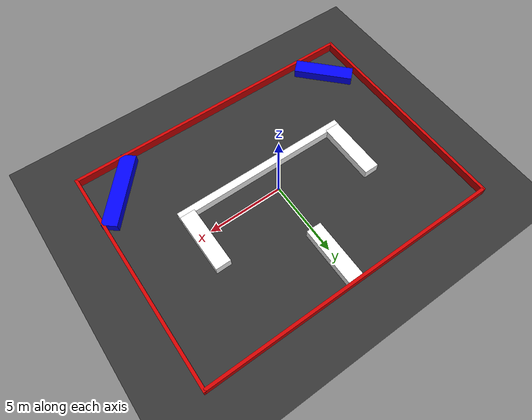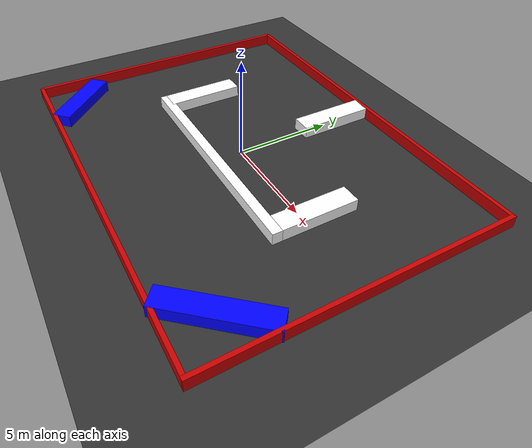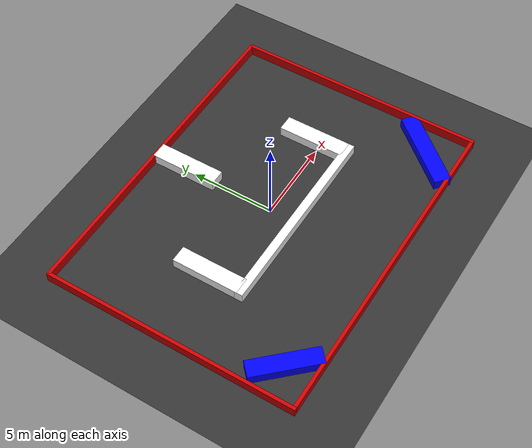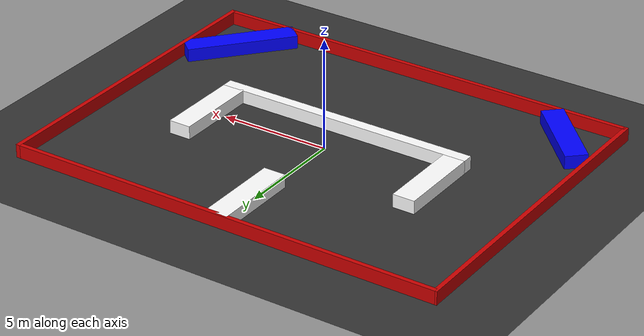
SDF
<?xml version="1.0" ?>
<sdf version="1.6">
  <world name="f1tenth_zigzag_track">

    <physics name="1ms" type="ignored">
      <max_step_size>0.001</max_step_size>
      <real_time_factor>1.0</real_time_factor>
      <real_time_update_rate>1000</real_time_update_rate>
    </physics>

    <gravity>0 0 -9.8</gravity>
    <magnetic_field>6e-06 2.3e-05 -4.2e-05</magnetic_field>
    <atmosphere type='adiabatic'/>

    <scene>
      <ambient>0.4 0.4 0.4 1</ambient>
      <background>0.7 0.7 0.7 1</background>
      <shadows>true</shadows>
    </scene>

    <light type="directional" name="sun">
      <cast_shadows>true</cast_shadows>
      <pose>0 0 10 0 0 0</pose>
      <diffuse>0.8 0.8 0.8 1</diffuse>
      <specular>0.2 0.2 0.2 1</specular>
      <direction>-0.5 0.1 -0.9</direction>
    </light>

    <model name="ground_plane">
      <static>true</static>
      <link name="link">
        <collision name="collision">
          <geometry><plane><normal>0 0 1</normal><size>20 20</size></plane></geometry>
          <surface><friction><ode/></friction></surface>
        </collision>
        <visual name="visual">
          <geometry><plane><normal>0 0 1</normal><size>20 20</size></plane></geometry>
          <material><ambient>0.2 0.2 0.2 1</ambient><diffuse>0.2 0.2 0.2 1</diffuse></material>
        </visual>
      </link>
    </model>

    <model name='outer_wall_top'>
      <static>true</static>
      <pose>0 7.5 0.3 0 0 0</pose>
      <link name='link'>
        <collision name='col'><geometry><box><size>20 0.2 0.6</size></box></geometry></collision>
        <visual name='vis'>
          <geometry><box><size>20 0.2 0.6</size></box></geometry>
          <material><ambient>0.8 0 0 1</ambient><diffuse>0.8 0 0 1</diffuse></material>
        </visual>
      </link>
    </model>

    <model name='outer_wall_bottom'>
      <static>true</static>
      <pose>0 -7.5 0.3 0 0 0</pose>
      <link name='link'>
        <collision name='col'><geometry><box><size>20 0.2 0.6</size></box></geometry></collision>
        <visual name='vis'>
          <geometry><box><size>20 0.2 0.6</size></box></geometry>
          <material><ambient>0.8 0 0 1</ambient><diffuse>0.8 0 0 1</diffuse></material>
        </visual>
      </link>
    </model>

    <model name='outer_wall_left'>
      <static>true</static>
      <pose>-10 0 0.3 0 0 0</pose>
      <link name='link'>
        <collision name='col'><geometry><box><size>0.2 15.2 0.6</size></box></geometry></collision>
        <visual name='vis'>
          <geometry><box><size>0.2 15.2 0.6</size></box></geometry>
          <material><ambient>0.8 0 0 1</ambient><diffuse>0.8 0 0 1</diffuse></material>
        </visual>
      </link>
    </model>

    <model name='outer_wall_right'>
      <static>true</static>
      <pose>10 0 0.3 0 0 0</pose>
      <link name='link'>
        <collision name='col'><geometry><box><size>0.2 15.2 0.6</size></box></geometry></collision>
        <visual name='vis'>
          <geometry><box><size>0.2 15.2 0.6</size></box></geometry>
          <material><ambient>0.8 0 0 1</ambient><diffuse>0.8 0 0 1</diffuse></material>
        </visual>
      </link>
    </model>

    <model name='wall_center_long'>
      <static>true</static>
      <pose>0.11 -1.66 0.3 0 0 0</pose>
      <link name='link'>
        <collision name='col'><geometry><box><size>12 0.5 0.6</size></box></geometry></collision>
        <visual name='vis'>
          <geometry><box><size>12 0.5 0.6</size></box></geometry>
          <material><ambient>1 1 1 1</ambient><diffuse>1 1 1 1</diffuse></material>
        </visual>
      </link>
    </model>

    <model name='chicane_block_1'>
      <static>true</static>
      <pose>-8.05 -5.8 0.3 0 0 0.76</pose>
      <link name='link'>
        <collision name='col'><geometry><box><size>1 4 0.6</size></box></geometry></collision>
        <visual name='vis'>
          <geometry><box><size>1 4 0.6</size></box></geometry>
          <material><ambient>0 0 1 1</ambient><diffuse>0 0 1 1</diffuse></material>
        </visual>
      </link>
    </model>

    <model name='chicane_block_2'>
      <static>true</static>
      <pose>8.13 -5.45 0.3 0 0 -0.71</pose>
      <link name='link'>
        <collision name='col'><geometry><box><size>1 5 0.6</size></box></geometry></collision>
        <visual name='vis'>
          <geometry><box><size>1 5 0.6</size></box></geometry>
          <material><ambient>0 0 1 1</ambient><diffuse>0 0 1 1</diffuse></material>
        </visual>
      </link>
    </model>

    <model name='hairpin_inner'>
      <static>true</static>
      <pose>-5.39 0.44 0.3 0 0 -1.57</pose>
      <link name='link'>
        <collision name='col'><geometry><box><size>4 1 0.6</size></box></geometry></collision>
        <visual name='vis'>
          <geometry><box><size>4 1 0.6</size></box></geometry>
          <material><ambient>1 1 1 1</ambient><diffuse>1 1 1 1</diffuse></material>
        </visual>
      </link>
    </model>

    <model name='hairpin_inner_1'>
      <static>true</static>
      <pose>0.03 5.52 0.3 0 0 -1.57</pose>
      <link name='link'>
        <collision name='col'><geometry><box><size>4 1 0.6</size></box></geometry></collision>
        <visual name='vis'>
          <geometry><box><size>4 1 0.6</size></box></geometry>
          <material><ambient>1 1 1 1</ambient><diffuse>1 1 1 1</diffuse></material>
        </visual>
      </link>
    </model>

    <model name='hairpin_inner_1_1'>
      <static>true</static>
      <pose>5.6071 0.44 0.3 0 0 -1.57</pose>
      <link name='link'>
        <collision name='col'><geometry><box><size>4 1 0.6</size></box></geometry></collision>
        <visual name='vis'>
          <geometry><box><size>4 1 0.6</size></box></geometry>
          <material><ambient>1 1 1 1</ambient><diffuse>1 1 1 1</diffuse></material>
        </visual>
      </link>
    </model>

  </world>
</sdf>
